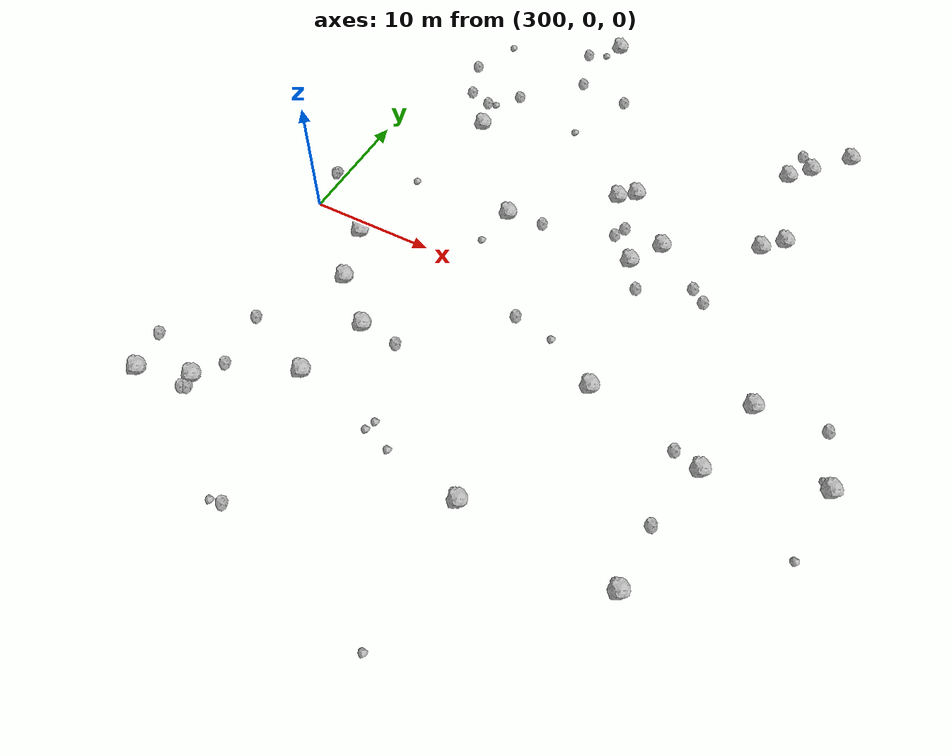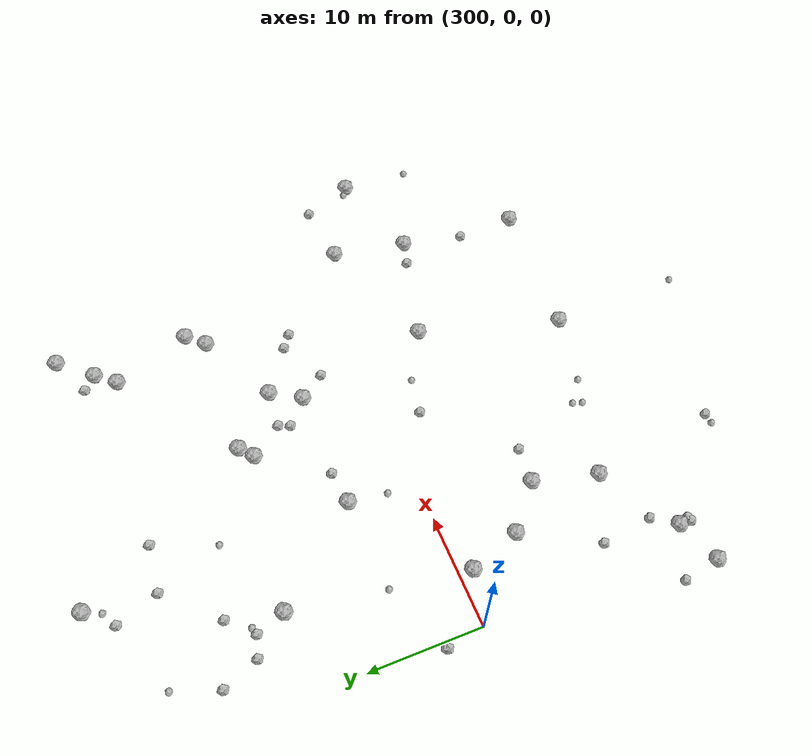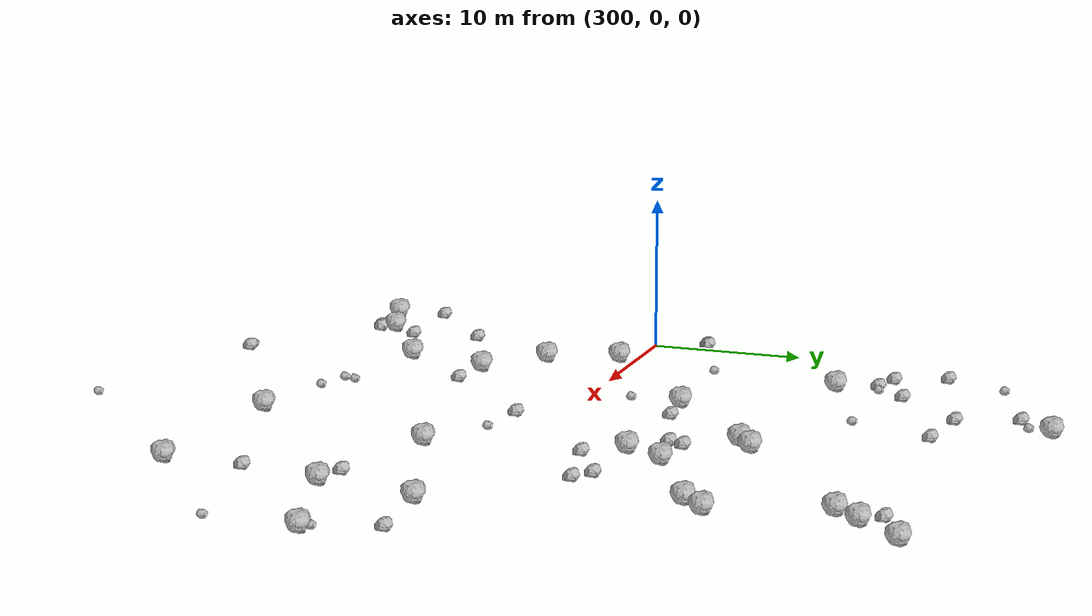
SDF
<sdf version="1.6">
 <world name="default">
  <include><uri>model://sun</uri></include>
  <model name="rock1_8_3">
   <include><uri>model://rock1</uri><pose>323.4923267477086 -18.124084631011307 0.5 0 0 0</pose></include>
  </model>
  <model name="rock1_8_4">
   <include><uri>model://rock1</uri><pose>336.58569266257075 -8.451314540455051 0.5 0 0 0</pose></include>
  </model>
  <model name="rock1_8_5">
   <include><uri>model://rock1</uri><pose>320.94244507070005 11.880312706751688 0.5 0 0 0</pose></include>
  </model>
  <model name="rock1_8_6">
   <include><uri>model://rock1</uri><pose>308.42190295635135 -14.413330859739236 0.5 0 0 0</pose></include>
  </model>
  <model name="rock1_8_7">
   <include><uri>model://rock1</uri><pose>333.1006657817771 12.151843586378718 0.5 0 0 0</pose></include>
  </model>
  <model name="rock1_8_8">
   <include><uri>model://rock1</uri><pose>327.11516258388184 -5.89887031713176 0.5 0 0 0</pose></include>
  </model>
  <model name="rock1_8_9">
   <include><uri>model://rock1</uri><pose>335.47928373268167 -18.83221076647854 0.5 0 0 0</pose></include>
  </model>
  <model name="rock1_8_10">
   <include><uri>model://rock1</uri><pose>314.0023822184985 6.057176248130851 0.5 0 0 0</pose></include>
  </model>
  <model name="rock1_8_11">
   <include><uri>model://rock1</uri><pose>326.2394054716141 8.653775552368145 0.5 0 0 0</pose></include>
  </model>
  <model name="rock1_8_12">
   <include><uri>model://rock1</uri><pose>301.8230295117522 -18.43500418089303 0.5 0 0 0</pose></include>
  </model>
  <model name="rock1_8_13">
   <include><uri>model://rock1</uri><pose>313.06461421330454 29.113710598480374 0.5 0 0 0</pose></include>
  </model>
  <model name="rock1_8_14">
   <include><uri>model://rock1</uri><pose>344.805663650753 -5.8371440237798 0.5 0 0 0</pose></include>
  </model>
  <model name="rock1_8_15">
   <include><uri>model://rock1</uri><pose>332.280913214853 20.59615922363176 0.5 0 0 0</pose></include>
  </model>
  <model name="rock1_8_16">
   <include><uri>model://rock1</uri><pose>309.944052546535 -8.87072297851416 0.5 0 0 0</pose></include>
  </model>
  <model name="rock1_8_17">
   <include><uri>model://rock1</uri><pose>306.22432058669335 -5.664705985605686 0.5 0 0 0</pose></include>
  </model>
  <model name="rock1_8_18">
   <include><uri>model://rock1</uri><pose>336.16274724109195 25.027625442704043 0.5 0 0 0</pose></include>
  </model>
  <model name="rock1_8_19">
   <include><uri>model://rock1</uri><pose>297.96640090694336 -19.78571754870915 0.5 0 0 0</pose></include>
  </model>
  <model name="rock1_8_20">
   <include><uri>model://rock1</uri><pose>304.6432134321499 -1.1131443191276666 0.5 0 0 0</pose></include>
  </model>
  <model name="rock1_8_21">
   <include><uri>model://rock1</uri><pose>334.5168083262514 13.651088197329734 0.5 0 0 0</pose></include>
  </model>
  <model name="rock1_8_22">
   <include><uri>model://rock1</uri><pose>324.6694514833994 6.0772543907334935 0.5 0 0 0</pose></include>
  </model>
  <model name="rock1_8_23">
   <include><uri>model://rock1</uri><pose>322.13713468155646 12.881001372642395 0.5 0 0 0</pose></include>
  </model>
  <model name="rock1_8_24">
   <include><uri>model://rock1</uri><pose>337.89898836383543 -2.013323735638828 0.5 0 0 0</pose></include>
  </model>
  <model name="rock1_8_25">
   <include><uri>model://rock1</uri><pose>333.6848339412306 22.250605258381512 0.5 0 0 0</pose></include>
  </model>
  <model name="rock1_8_26">
   <include><uri>model://rock1</uri><pose>307.04812301191754 14.258435713511929 0.5 0 0 0</pose></include>
  </model>
  <model name="rock2_8_0">
   <include><uri>model://rock2</uri><pose>332.5733556882319 23.445940859491934 0.3 0 0 0</pose></include>
  </model>
  <model name="rock2_8_1">
   <include><uri>model://rock2</uri><pose>302.669533140087 -11.971916048737032 0.3 0 0 0</pose></include>
  </model>
  <model name="rock2_8_2">
   <include><uri>model://rock2</uri><pose>301.7488371654671 -19.52164117736085 0.3 0 0 0</pose></include>
  </model>
  <model name="rock2_8_3">
   <include><uri>model://rock2</uri><pose>316.9420917770426 6.354560823031406 0.3 0 0 0</pose></include>
  </model>
  <model name="rock2_8_4">
   <include><uri>model://rock2</uri><pose>299.46196595715 3.4936014675748908 0.3 0 0 0</pose></include>
  </model>
  <model name="rock2_8_5">
   <include><uri>model://rock2</uri><pose>303.23744896829055 -16.458563847715897 0.3 0 0 0</pose></include>
  </model>
  <model name="rock2_8_6">
   <include><uri>model://rock2</uri><pose>330.0636719304564 5.8462147971897025 0.3 0 0 0</pose></include>
  </model>
  <model name="rock2_8_7">
   <include><uri>model://rock2</uri><pose>308.19907847219145 18.87542240045002 0.3 0 0 0</pose></include>
  </model>
  <model name="rock2_8_8">
   <include><uri>model://rock2</uri><pose>306.13726838018437 16.84387390145811 0.3 0 0 0</pose></include>
  </model>
  <model name="rock2_8_9">
   <include><uri>model://rock2</uri><pose>302.113091728649 -19.35532401101146 0.3 0 0 0</pose></include>
  </model>
  <model name="rock2_8_10">
   <include><uri>model://rock2</uri><pose>316.5463113459376 22.472872143866752 0.3 0 0 0</pose></include>
  </model>
  <model name="rock2_8_11">
   <include><uri>model://rock2</uri><pose>322.92640516143143 9.001934824875079 0.3 0 0 0</pose></include>
  </model>
  <model name="rock2_8_12">
   <include><uri>model://rock2</uri><pose>322.5127888358159 8.005295429327958 0.3 0 0 0</pose></include>
  </model>
  <model name="rock2_8_13">
   <include><uri>model://rock2</uri><pose>304.2359836373753 17.4519376792515 0.3 0 0 0</pose></include>
  </model>
  <model name="rock2_8_14">
   <include><uri>model://rock2</uri><pose>319.5321672665361 -2.8202528225837256 0.3 0 0 0</pose></include>
  </model>
  <model name="rock2_8_15">
   <include><uri>model://rock2</uri><pose>326.22822245677486 3.7891647784536104 0.3 0 0 0</pose></include>
  </model>
  <model name="rock2_8_16">
   <include><uri>model://rock2</uri><pose>299.3876025331563 3.3835865728611196 0.3 0 0 0</pose></include>
  </model>
  <model name="rock2_8_17">
   <include><uri>model://rock2</uri><pose>334.4493778348529 -7.891418045473074 0.3 0 0 0</pose></include>
  </model>
  <model name="rock2_8_18">
   <include><uri>model://rock2</uri><pose>311.00291350546627 26.89507284187816 0.3 0 0 0</pose></include>
  </model>
  <model name="rock2_8_19">
   <include><uri>model://rock2</uri><pose>312.3260620746303 23.06080329516724 0.3 0 0 0</pose></include>
  </model>
  <model name="rock2_8_20">
   <include><uri>model://rock2</uri><pose>343.1661246748026 -1.4821001374840463 0.3 0 0 0</pose></include>
  </model>
  <model name="rock2_8_21">
   <include><uri>model://rock2</uri><pose>313.05478456626645 -9.205319423380384 0.3 0 0 0</pose></include>
  </model>
  <model name="rock2_8_22">
   <include><uri>model://rock2</uri><pose>302.95118244329063 20.71125648222244 0.3 0 0 0</pose></include>
  </model>
  <model name="rock2_8_23">
   <include><uri>model://rock2</uri><pose>335.37902374137366 -13.750819589006042 0.3 0 0 0</pose></include>
  </model>
  <model name="rock2_8_24">
   <include><uri>model://rock2</uri><pose>331.23629280644525 4.956741807954053 0.3 0 0 0</pose></include>
  </model>
  <model name="rock2_8_25">
   <include><uri>model://rock2</uri><pose>310.03718434862196 -25.574710281790377 0.3 0 0 0</pose></include>
  </model>
  <model name="rock2_8_26">
   <include><uri>model://rock2</uri><pose>297.33297306593664 -16.55832419687441 0.3 0 0 0</pose></include>
  </model>
  <model name="rock3_8_0">
   <include><uri>model://rock3</uri><pose>315.35796957776955 -15.535397368592959 0.2 0 0 0</pose></include>
  </model>
  <model name="rock3_8_1">
   <include><uri>model://rock3</uri><pose>305.6413991530677 5.763123944377178 0.2 0 0 0</pose></include>
  </model>
  <model name="rock3_8_2">
   <include><uri>model://rock3</uri><pose>322.7579309391459 -3.462751556857139 0.2 0 0 0</pose></include>
  </model>
  <model name="rock3_8_3">
   <include><uri>model://rock3</uri><pose>315.094798685929 -16.35021349305288 0.2 0 0 0</pose></include>
  </model>
  <model name="rock3_8_4">
   <include><uri>model://rock3</uri><pose>304.38844122309683 24.598803942868088 0.2 0 0 0</pose></include>
  </model>
  <model name="rock3_8_5">
   <include><uri>model://rock3</uri><pose>317.2989518874173 -17.02427413692062 0.2 0 0 0</pose></include>
  </model>
  <model name="rock3_8_6">
   <include><uri>model://rock3</uri><pose>344.3517861067488 -11.77555857818271 0.2 0 0 0</pose></include>
  </model>
  <model name="rock3_8_7">
   <include><uri>model://rock3</uri><pose>306.77037666235935 17.002522689316088 0.2 0 0 0</pose></include>
  </model>
  <model name="rock3_8_8">
   <include><uri>model://rock3</uri><pose>344.0940229725025 -5.399458882719987 0.2 0 0 0</pose></include>
  </model>
  <model name="rock3_8_9">
   <include><uri>model://rock3</uri><pose>314.3909905223795 17.140437030158765 0.2 0 0 0</pose></include>
  </model>
  <model name="rock3_8_10">
   <include><uri>model://rock3</uri><pose>313.4836439286687 2.647037179706892 0.2 0 0 0</pose></include>
  </model>
  <model name="rock3_8_11">
   <include><uri>model://rock3</uri><pose>312.37349974972847 27.600888593087177 0.2 0 0 0</pose></include>
  </model>
  <model name="rock3_8_12">
   <include><uri>model://rock3</uri><pose>323.637651075492 -29.625860778784038 0.2 0 0 0</pose></include>
  </model>
  <model name="rock3_8_13">
   <include><uri>model://rock3</uri><pose>309.09853311658696 -25.742633709326817 0.2 0 0 0</pose></include>
  </model>
 </world>
</sdf>
